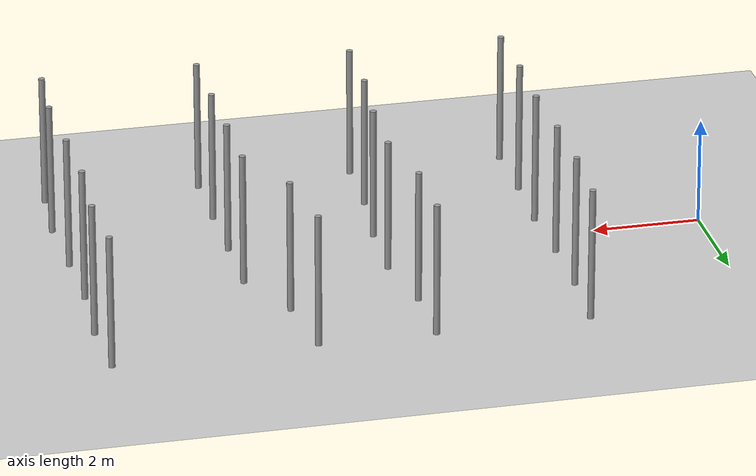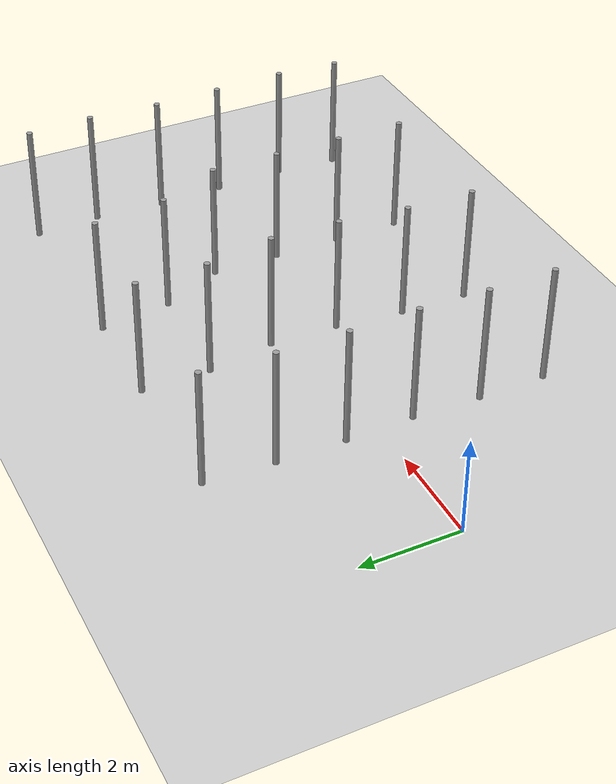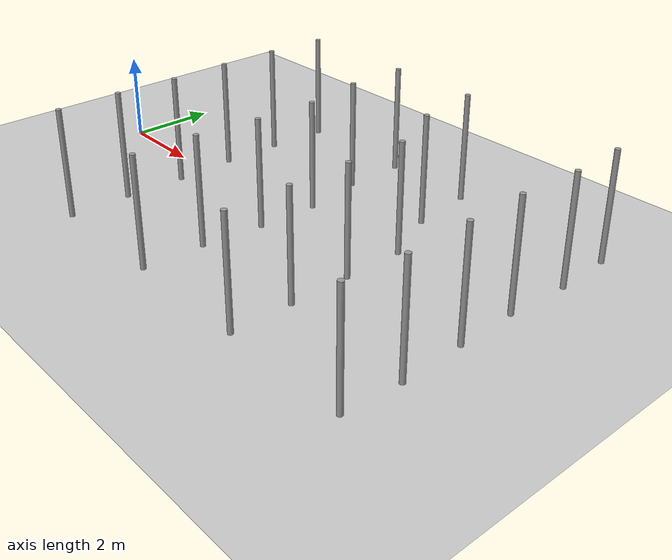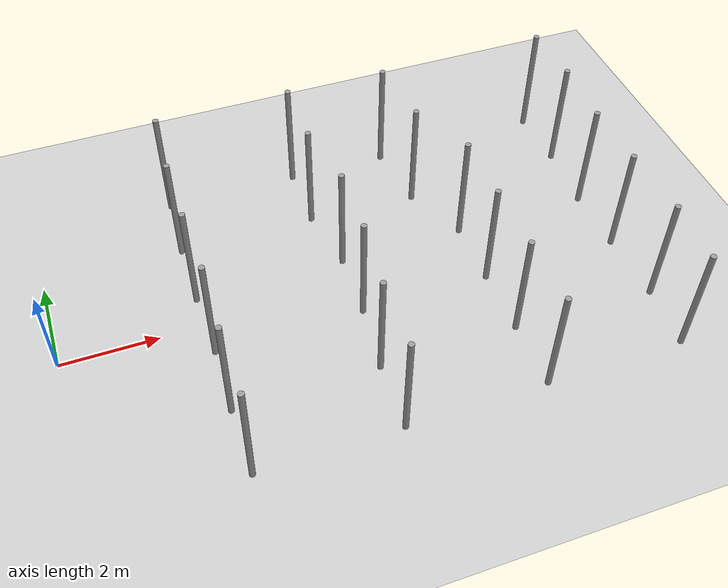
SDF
<sdf version="1.6">
 <world name="default">
  <light name="sun" type="directional">
   <pose>0 0 10 0 -0 0</pose>
   <diffuse>0.8 0.8 0.8 1</diffuse>
   <specular>0.1 0.1 0.1 1</specular>
   <attenuation>
    <range>1000</range>
    <constant>0.9</constant>
    <linear>0.01</linear>
    <quadratic>0.001</quadratic>
   </attenuation>
   <direction>-0.5 0.5 -1</direction>
  </light>
  <model name="ground_plane">
   <static>1</static>
   <link name="link">
    <collision name="collision">
     <geometry><plane><normal>0 0 1</normal><size>100 100</size></plane></geometry>
     <surface><friction><ode><mu>100</mu><mu2>50</mu2></ode></friction></surface>
    </collision>
    <visual name="visual">
     <cast_shadows>0</cast_shadows>
     <geometry><plane><normal>0 0 1</normal><size>100 100</size></plane></geometry>
     <material>
      <script><uri>file://media/materials/scripts/gazebo.material</uri><name>Gazebo/Grey</name></script>
     </material>
    </visual>
   </link>
  </model>
  <gravity>0 0 -9.8</gravity>
  <magnetic_field>6e-06 2.3e-05 -4.2e-05</magnetic_field>
  <atmosphere type="adiabatic"/>
  <physics name="default_physics" default="0" type="ode">
   <max_step_size>0.001</max_step_size>
   <real_time_factor>1</real_time_factor>
   <real_time_update_rate>1000</real_time_update_rate>
  </physics>
  <scene><ambient>0.4 0.4 0.4 1</ambient><background>0.7 0.7 0.7 1</background><shadows>1</shadows></scene>
  <spherical_coordinates>
   <surface_model>EARTH_WGS84</surface_model>
   <latitude_deg>0</latitude_deg>
   <longitude_deg>0</longitude_deg>
   <elevation>0</elevation>
   <heading_deg>0</heading_deg>
  </spherical_coordinates>
  <model name="pole_8">
   <link name="link_0">
    <inertial>
     <mass>0.0364582</mass>
     <inertia>
      <ixx>0.00312124</ixx>
      <ixy>0</ixy>
      <ixz>0</ixz>
      <iyy>0.00312124</iyy>
      <iyz>0</iyz>
      <izz>0.00016615</izz>
     </inertia>
    </inertial>
    <visual name="visual">
     <geometry><cylinder><radius>0.06</radius><length>2.5</length></cylinder></geometry>
     <material>
      <lighting>1</lighting>
      <script><uri>file://media/materials/scripts/gazebo.material</uri><name>Gazebo/Grey</name></script>
      <ambient>0.3 0.3 0.3 1</ambient>
      <diffuse>0.7 0.7 0.7 1</diffuse>
      <specular>0.01 0.01 0.01 1</specular>
      <emissive>0 0 0 1</emissive>
      <shader type="vertex"><normal_map>__default__</normal_map></shader>
     </material>
    </visual>
    <collision name="collision">
     <geometry><cylinder><radius>0.06</radius><length>2.5</length></cylinder></geometry>
     <surface>
      <friction>
       <ode><mu>1</mu><mu2>1</mu2><fdir1>0 0 0</fdir1><slip1>0</slip1><slip2>0</slip2></ode>
       <torsional>
        <coefficient>1</coefficient>
        <patch_radius>0</patch_radius>
        <surface_radius>0</surface_radius>
        <use_patch_radius>1</use_patch_radius>
        <ode><slip>0</slip></ode>
       </torsional>
      </friction>
      <bounce><restitution_coefficient>0</restitution_coefficient><threshold>1e+06</threshold></bounce>
      <contact>
       <collide_without_contact>0</collide_without_contact>
       <collide_without_contact_bitmask>1</collide_without_contact_bitmask>
       <collide_bitmask>1</collide_bitmask>
       <ode>
        <soft_cfm>0</soft_cfm>
        <soft_erp>0.2</soft_erp>
        <kp>1e+13</kp>
        <kd>1</kd>
        <max_vel>0.01</max_vel>
        <min_depth>0</min_depth>
       </ode>
       <bullet>
        <split_impulse>1</split_impulse>
        <split_impulse_penetration_threshold>-0.01</split_impulse_penetration_threshold>
        <soft_cfm>0</soft_cfm>
        <soft_erp>0.2</soft_erp>
        <kp>1e+13</kp>
        <kd>1</kd>
       </bullet>
      </contact>
     </surface>
    </collision>
   </link>
   <static>0</static>
   <pose>5.98903 -0.698712 1.25 -1e-06 -1e-06 -0.031912</pose>
  </model>
  <model name="pole_9">
   <link name="link_0">
    <inertial>
     <mass>0.0364582</mass>
     <inertia>
      <ixx>0.00312124</ixx>
      <ixy>0</ixy>
      <ixz>0</ixz>
      <iyy>0.00312124</iyy>
      <iyz>0</iyz>
      <izz>0.00016615</izz>
     </inertia>
    </inertial>
    <visual name="visual">
     <geometry><cylinder><radius>0.06</radius><length>2.5</length></cylinder></geometry>
     <material>
      <lighting>1</lighting>
      <script><uri>file://media/materials/scripts/gazebo.material</uri><name>Gazebo/Grey</name></script>
      <ambient>0.3 0.3 0.3 1</ambient>
      <diffuse>0.7 0.7 0.7 1</diffuse>
      <specular>0.01 0.01 0.01 1</specular>
      <emissive>0 0 0 1</emissive>
      <shader type="vertex"><normal_map>__default__</normal_map></shader>
     </material>
    </visual>
    <collision name="collision">
     <geometry><cylinder><radius>0.06</radius><length>2.5</length></cylinder></geometry>
     <surface>
      <friction>
       <ode><mu>1</mu><mu2>1</mu2><fdir1>0 0 0</fdir1><slip1>0</slip1><slip2>0</slip2></ode>
       <torsional>
        <coefficient>1</coefficient>
        <patch_radius>0</patch_radius>
        <surface_radius>0</surface_radius>
        <use_patch_radius>1</use_patch_radius>
        <ode><slip>0</slip></ode>
       </torsional>
      </friction>
      <bounce><restitution_coefficient>0</restitution_coefficient><threshold>1e+06</threshold></bounce>
      <contact>
       <collide_without_contact>0</collide_without_contact>
       <collide_without_contact_bitmask>1</collide_without_contact_bitmask>
       <collide_bitmask>1</collide_bitmask>
       <ode>
        <soft_cfm>0</soft_cfm>
        <soft_erp>0.2</soft_erp>
        <kp>1e+13</kp>
        <kd>1</kd>
        <max_vel>0.01</max_vel>
        <min_depth>0</min_depth>
       </ode>
       <bullet>
        <split_impulse>1</split_impulse>
        <split_impulse_penetration_threshold>-0.01</split_impulse_penetration_threshold>
        <soft_cfm>0</soft_cfm>
        <soft_erp>0.2</soft_erp>
        <kp>1e+13</kp>
        <kd>1</kd>
       </bullet>
      </contact>
     </surface>
    </collision>
   </link>
   <static>0</static>
   <pose>2.90019 0.701425 1.24999 -1e-06 -0 -0.048822</pose>
  </model>
  <model name="pole_10">
   <link name="link_0">
    <inertial>
     <mass>0.0364582</mass>
     <inertia>
      <ixx>0.00312124</ixx>
      <ixy>0</ixy>
      <ixz>0</ixz>
      <iyy>0.00312124</iyy>
      <iyz>0</iyz>
      <izz>0.00016615</izz>
     </inertia>
    </inertial>
    <visual name="visual">
     <geometry><cylinder><radius>0.06</radius><length>2.5</length></cylinder></geometry>
     <material>
      <lighting>1</lighting>
      <script><uri>file://media/materials/scripts/gazebo.material</uri><name>Gazebo/Grey</name></script>
      <ambient>0.3 0.3 0.3 1</ambient>
      <diffuse>0.7 0.7 0.7 1</diffuse>
      <specular>0.01 0.01 0.01 1</specular>
      <emissive>0 0 0 1</emissive>
      <shader type="vertex"><normal_map>__default__</normal_map></shader>
     </material>
    </visual>
    <collision name="collision">
     <geometry><cylinder><radius>0.06</radius><length>2.5</length></cylinder></geometry>
     <surface>
      <friction>
       <ode><mu>1</mu><mu2>1</mu2><fdir1>0 0 0</fdir1><slip1>0</slip1><slip2>0</slip2></ode>
       <torsional>
        <coefficient>1</coefficient>
        <patch_radius>0</patch_radius>
        <surface_radius>0</surface_radius>
        <use_patch_radius>1</use_patch_radius>
        <ode><slip>0</slip></ode>
       </torsional>
      </friction>
      <bounce><restitution_coefficient>0</restitution_coefficient><threshold>1e+06</threshold></bounce>
      <contact>
       <collide_without_contact>0</collide_without_contact>
       <collide_without_contact_bitmask>1</collide_without_contact_bitmask>
       <collide_bitmask>1</collide_bitmask>
       <ode>
        <soft_cfm>0</soft_cfm>
        <soft_erp>0.2</soft_erp>
        <kp>1e+13</kp>
        <kd>1</kd>
        <max_vel>0.01</max_vel>
        <min_depth>0</min_depth>
       </ode>
       <bullet>
        <split_impulse>1</split_impulse>
        <split_impulse_penetration_threshold>-0.01</split_impulse_penetration_threshold>
        <soft_cfm>0</soft_cfm>
        <soft_erp>0.2</soft_erp>
        <kp>1e+13</kp>
        <kd>1</kd>
       </bullet>
      </contact>
     </surface>
    </collision>
   </link>
   <static>0</static>
   <pose>6.03409 0.701286 1.24999 0 0 -0.034579</pose>
  </model>
  <model name="pole_11">
   <link name="link_0">
    <inertial>
     <mass>0.0364582</mass>
     <inertia>
      <ixx>0.00312124</ixx>
      <ixy>0</ixy>
      <ixz>0</ixz>
      <iyy>0.00312124</iyy>
      <iyz>0</iyz>
      <izz>0.00016615</izz>
     </inertia>
    </inertial>
    <visual name="visual">
     <geometry><cylinder><radius>0.06</radius><length>2.5</length></cylinder></geometry>
     <material>
      <lighting>1</lighting>
      <script><uri>file://media/materials/scripts/gazebo.material</uri><name>Gazebo/Grey</name></script>
      <ambient>0.3 0.3 0.3 1</ambient>
      <diffuse>0.7 0.7 0.7 1</diffuse>
      <specular>0.01 0.01 0.01 1</specular>
      <emissive>0 0 0 1</emissive>
      <shader type="vertex"><normal_map>__default__</normal_map></shader>
     </material>
    </visual>
    <collision name="collision">
     <geometry><cylinder><radius>0.06</radius><length>2.5</length></cylinder></geometry>
     <surface>
      <friction>
       <ode><mu>1</mu><mu2>1</mu2><fdir1>0 0 0</fdir1><slip1>0</slip1><slip2>0</slip2></ode>
       <torsional>
        <coefficient>1</coefficient>
        <patch_radius>0</patch_radius>
        <surface_radius>0</surface_radius>
        <use_patch_radius>1</use_patch_radius>
        <ode><slip>0</slip></ode>
       </torsional>
      </friction>
      <bounce><restitution_coefficient>0</restitution_coefficient><threshold>1e+06</threshold></bounce>
      <contact>
       <collide_without_contact>0</collide_without_contact>
       <collide_without_contact_bitmask>1</collide_without_contact_bitmask>
       <collide_bitmask>1</collide_bitmask>
       <ode>
        <soft_cfm>0</soft_cfm>
        <soft_erp>0.2</soft_erp>
        <kp>1e+13</kp>
        <kd>1</kd>
        <max_vel>0.01</max_vel>
        <min_depth>0</min_depth>
       </ode>
       <bullet>
        <split_impulse>1</split_impulse>
        <split_impulse_penetration_threshold>-0.01</split_impulse_penetration_threshold>
        <soft_cfm>0</soft_cfm>
        <soft_erp>0.2</soft_erp>
        <kp>1e+13</kp>
        <kd>1</kd>
       </bullet>
      </contact>
     </surface>
    </collision>
   </link>
   <static>0</static>
   <pose>2.93704 -0.698646 1.25 -1e-06 -0 -0.032243</pose>
  </model>
  <model name="pole_11_clone">
   <link name="link_0">
    <inertial>
     <mass>0.0364582</mass>
     <inertia>
      <ixx>0.00312124</ixx>
      <ixy>0</ixy>
      <ixz>0</ixz>
      <iyy>0.00312124</iyy>
      <iyz>0</iyz>
      <izz>0.00016615</izz>
     </inertia>
    </inertial>
    <visual name="visual">
     <geometry><cylinder><radius>0.06</radius><length>2.5</length></cylinder></geometry>
     <material>
      <lighting>1</lighting>
      <script><uri>file://media/materials/scripts/gazebo.material</uri><name>Gazebo/Grey</name></script>
      <ambient>0.3 0.3 0.3 1</ambient>
      <diffuse>0.7 0.7 0.7 1</diffuse>
      <specular>0.01 0.01 0.01 1</specular>
      <emissive>0 0 0 1</emissive>
      <shader type="vertex"><normal_map>__default__</normal_map></shader>
     </material>
    </visual>
    <collision name="collision">
     <geometry><cylinder><radius>0.06</radius><length>2.5</length></cylinder></geometry>
     <surface>
      <friction>
       <ode><mu>1</mu><mu2>1</mu2><fdir1>0 0 0</fdir1><slip1>0</slip1><slip2>0</slip2></ode>
       <torsional>
        <coefficient>1</coefficient>
        <patch_radius>0</patch_radius>
        <surface_radius>0</surface_radius>
        <use_patch_radius>1</use_patch_radius>
        <ode><slip>0</slip></ode>
       </torsional>
      </friction>
      <bounce><restitution_coefficient>0</restitution_coefficient><threshold>1e+06</threshold></bounce>
      <contact>
       <collide_without_contact>0</collide_without_contact>
       <collide_without_contact_bitmask>1</collide_without_contact_bitmask>
       <collide_bitmask>1</collide_bitmask>
       <ode>
        <soft_cfm>0</soft_cfm>
        <soft_erp>0.2</soft_erp>
        <kp>1e+13</kp>
        <kd>1</kd>
        <max_vel>0.01</max_vel>
        <min_depth>0</min_depth>
       </ode>
       <bullet>
        <split_impulse>1</split_impulse>
        <split_impulse_penetration_threshold>-0.01</split_impulse_penetration_threshold>
        <soft_cfm>0</soft_cfm>
        <soft_erp>0.2</soft_erp>
        <kp>1e+13</kp>
        <kd>1</kd>
       </bullet>
      </contact>
     </surface>
    </collision>
   </link>
   <static>0</static>
   <pose>11.621 3.50118 1.25 -1e-06 1e-06 -0.041316</pose>
  </model>
  <model name="pole">
   <link name="link_0">
    <inertial>
     <mass>0.0364582</mass>
     <inertia>
      <ixx>0.00312124</ixx>
      <ixy>0</ixy>
      <ixz>0</ixz>
      <iyy>0.00312124</iyy>
      <iyz>0</iyz>
      <izz>0.00016615</izz>
     </inertia>
    </inertial>
    <visual name="visual">
     <geometry><cylinder><radius>0.06</radius><length>2.5</length></cylinder></geometry>
     <material>
      <lighting>1</lighting>
      <script><uri>file://media/materials/scripts/gazebo.material</uri><name>Gazebo/Grey</name></script>
      <ambient>0.3 0.3 0.3 1</ambient>
      <diffuse>0.7 0.7 0.7 1</diffuse>
      <specular>0.01 0.01 0.01 1</specular>
      <emissive>0 0 0 1</emissive>
      <shader type="vertex"><normal_map>__default__</normal_map></shader>
     </material>
    </visual>
    <collision name="collision">
     <geometry><cylinder><radius>0.06</radius><length>2.5</length></cylinder></geometry>
     <surface>
      <friction>
       <ode><mu>1</mu><mu2>1</mu2><fdir1>0 0 0</fdir1><slip1>0</slip1><slip2>0</slip2></ode>
       <torsional>
        <coefficient>1</coefficient>
        <patch_radius>0</patch_radius>
        <surface_radius>0</surface_radius>
        <use_patch_radius>1</use_patch_radius>
        <ode><slip>0</slip></ode>
       </torsional>
      </friction>
      <bounce><restitution_coefficient>0</restitution_coefficient><threshold>1e+06</threshold></bounce>
      <contact>
       <collide_without_contact>0</collide_without_contact>
       <collide_without_contact_bitmask>1</collide_without_contact_bitmask>
       <collide_bitmask>1</collide_bitmask>
       <ode>
        <soft_cfm>0</soft_cfm>
        <soft_erp>0.2</soft_erp>
        <kp>1e+13</kp>
        <kd>1</kd>
        <max_vel>0.01</max_vel>
        <min_depth>0</min_depth>
       </ode>
       <bullet>
        <split_impulse>1</split_impulse>
        <split_impulse_penetration_threshold>-0.01</split_impulse_penetration_threshold>
        <soft_cfm>0</soft_cfm>
        <soft_erp>0.2</soft_erp>
        <kp>1e+13</kp>
        <kd>1</kd>
       </bullet>
      </contact>
     </surface>
    </collision>
   </link>
   <static>0</static>
   <pose>2.9001 -3.49913 1.25 -1e-06 1e-06 -0.027606</pose>
  </model>
  <model name="pole_0">
   <link name="link_0">
    <inertial>
     <mass>0.0364582</mass>
     <inertia>
      <ixx>0.00312124</ixx>
      <ixy>0</ixy>
      <ixz>0</ixz>
      <iyy>0.00312124</iyy>
      <iyz>0</iyz>
      <izz>0.00016615</izz>
     </inertia>
    </inertial>
    <visual name="visual">
     <geometry><cylinder><radius>0.06</radius><length>2.5</length></cylinder></geometry>
     <material>
      <lighting>1</lighting>
      <script><uri>file://media/materials/scripts/gazebo.material</uri><name>Gazebo/Grey</name></script>
      <ambient>0.3 0.3 0.3 1</ambient>
      <diffuse>0.7 0.7 0.7 1</diffuse>
      <specular>0.01 0.01 0.01 1</specular>
      <emissive>0 0 0 1</emissive>
      <shader type="vertex"><normal_map>__default__</normal_map></shader>
     </material>
    </visual>
    <collision name="collision">
     <geometry><cylinder><radius>0.06</radius><length>2.5</length></cylinder></geometry>
     <surface>
      <friction>
       <ode><mu>1</mu><mu2>1</mu2><fdir1>0 0 0</fdir1><slip1>0</slip1><slip2>0</slip2></ode>
       <torsional>
        <coefficient>1</coefficient>
        <patch_radius>0</patch_radius>
        <surface_radius>0</surface_radius>
        <use_patch_radius>1</use_patch_radius>
        <ode><slip>0</slip></ode>
       </torsional>
      </friction>
      <bounce><restitution_coefficient>0</restitution_coefficient><threshold>1e+06</threshold></bounce>
      <contact>
       <collide_without_contact>0</collide_without_contact>
       <collide_without_contact_bitmask>1</collide_without_contact_bitmask>
       <collide_bitmask>1</collide_bitmask>
       <ode>
        <soft_cfm>0</soft_cfm>
        <soft_erp>0.2</soft_erp>
        <kp>1e+13</kp>
        <kd>1</kd>
        <max_vel>0.01</max_vel>
        <min_depth>0</min_depth>
       </ode>
       <bullet>
        <split_impulse>1</split_impulse>
        <split_impulse_penetration_threshold>-0.01</split_impulse_penetration_threshold>
        <soft_cfm>0</soft_cfm>
        <soft_erp>0.2</soft_erp>
        <kp>1e+13</kp>
        <kd>1</kd>
       </bullet>
      </contact>
     </surface>
    </collision>
   </link>
   <static>0</static>
   <pose>7.92452 3.46871 1.24999 -1e-06 -1e-06 -0.031557</pose>
  </model>
  <model name="pole_1">
   <link name="link_0">
    <inertial>
     <mass>0.0364582</mass>
     <inertia>
      <ixx>0.00312124</ixx>
      <ixy>0</ixy>
      <ixz>0</ixz>
      <iyy>0.00312124</iyy>
      <iyz>0</iyz>
      <izz>0.00016615</izz>
     </inertia>
    </inertial>
    <visual name="visual">
     <geometry><cylinder><radius>0.06</radius><length>2.5</length></cylinder></geometry>
     <material>
      <lighting>1</lighting>
      <script><uri>file://media/materials/scripts/gazebo.material</uri><name>Gazebo/Grey</name></script>
      <ambient>0.3 0.3 0.3 1</ambient>
      <diffuse>0.7 0.7 0.7 1</diffuse>
      <specular>0.01 0.01 0.01 1</specular>
      <emissive>0 0 0 1</emissive>
      <shader type="vertex"><normal_map>__default__</normal_map></shader>
     </material>
    </visual>
    <collision name="collision">
     <geometry><cylinder><radius>0.06</radius><length>2.5</length></cylinder></geometry>
     <surface>
      <friction>
       <ode><mu>1</mu><mu2>1</mu2><fdir1>0 0 0</fdir1><slip1>0</slip1><slip2>0</slip2></ode>
       <torsional>
        <coefficient>1</coefficient>
        <patch_radius>0</patch_radius>
        <surface_radius>0</surface_radius>
        <use_patch_radius>1</use_patch_radius>
        <ode><slip>0</slip></ode>
       </torsional>
      </friction>
      <bounce><restitution_coefficient>0</restitution_coefficient><threshold>1e+06</threshold></bounce>
      <contact>
       <collide_without_contact>0</collide_without_contact>
       <collide_without_contact_bitmask>1</collide_without_contact_bitmask>
       <collide_bitmask>1</collide_bitmask>
       <ode>
        <soft_cfm>0</soft_cfm>
        <soft_erp>0.2</soft_erp>
        <kp>1e+13</kp>
        <kd>1</kd>
        <max_vel>0.01</max_vel>
        <min_depth>0</min_depth>
       </ode>
       <bullet>
        <split_impulse>1</split_impulse>
        <split_impulse_penetration_threshold>-0.01</split_impulse_penetration_threshold>
        <soft_cfm>0</soft_cfm>
        <soft_erp>0.2</soft_erp>
        <kp>1e+13</kp>
        <kd>1</kd>
       </bullet>
      </contact>
     </surface>
    </collision>
   </link>
   <static>0</static>
   <pose>11.6854 2.16317 1.24999 0 -1e-06 -0.031765</pose>
  </model>
  <model name="pole_3">
   <link name="link_0">
    <inertial>
     <mass>0.0364582</mass>
     <inertia>
      <ixx>0.00312124</ixx>
      <ixy>0</ixy>
      <ixz>0</ixz>
      <iyy>0.00312124</iyy>
      <iyz>0</iyz>
      <izz>0.00016615</izz>
     </inertia>
    </inertial>
    <visual name="visual">
     <geometry><cylinder><radius>0.06</radius><length>2.5</length></cylinder></geometry>
     <material>
      <lighting>1</lighting>
      <script><uri>file://media/materials/scripts/gazebo.material</uri><name>Gazebo/Grey</name></script>
      <ambient>0.3 0.3 0.3 1</ambient>
      <diffuse>0.7 0.7 0.7 1</diffuse>
      <specular>0.01 0.01 0.01 1</specular>
      <emissive>0 0 0 1</emissive>
      <shader type="vertex"><normal_map>__default__</normal_map></shader>
     </material>
    </visual>
    <collision name="collision">
     <geometry><cylinder><radius>0.06</radius><length>2.5</length></cylinder></geometry>
     <surface>
      <friction>
       <ode><mu>1</mu><mu2>1</mu2><fdir1>0 0 0</fdir1><slip1>0</slip1><slip2>0</slip2></ode>
       <torsional>
        <coefficient>1</coefficient>
        <patch_radius>0</patch_radius>
        <surface_radius>0</surface_radius>
        <use_patch_radius>1</use_patch_radius>
        <ode><slip>0</slip></ode>
       </torsional>
      </friction>
      <bounce><restitution_coefficient>0</restitution_coefficient><threshold>1e+06</threshold></bounce>
      <contact>
       <collide_without_contact>0</collide_without_contact>
       <collide_without_contact_bitmask>1</collide_without_contact_bitmask>
       <collide_bitmask>1</collide_bitmask>
       <ode>
        <soft_cfm>0</soft_cfm>
        <soft_erp>0.2</soft_erp>
        <kp>1e+13</kp>
        <kd>1</kd>
        <max_vel>0.01</max_vel>
        <min_depth>0</min_depth>
       </ode>
       <bullet>
        <split_impulse>1</split_impulse>
        <split_impulse_penetration_threshold>-0.01</split_impulse_penetration_threshold>
        <soft_cfm>0</soft_cfm>
        <soft_erp>0.2</soft_erp>
        <kp>1e+13</kp>
        <kd>1</kd>
       </bullet>
      </contact>
     </surface>
    </collision>
   </link>
   <static>0</static>
   <pose>8.70015 -0.698813 1.25 0 -1e-06 -0.027629</pose>
  </model>
  <model name="pole_5">
   <link name="link_0">
    <inertial>
     <mass>0.0364582</mass>
     <inertia>
      <ixx>0.00312124</ixx>
      <ixy>0</ixy>
      <ixz>0</ixz>
      <iyy>0.00312124</iyy>
      <iyz>0</iyz>
      <izz>0.00016615</izz>
     </inertia>
    </inertial>
    <visual name="visual">
     <geometry><cylinder><radius>0.06</radius><length>2.5</length></cylinder></geometry>
     <material>
      <lighting>1</lighting>
      <script><uri>file://media/materials/scripts/gazebo.material</uri><name>Gazebo/Grey</name></script>
      <ambient>0.3 0.3 0.3 1</ambient>
      <diffuse>0.7 0.7 0.7 1</diffuse>
      <specular>0.01 0.01 0.01 1</specular>
      <emissive>0 0 0 1</emissive>
      <shader type="vertex"><normal_map>__default__</normal_map></shader>
     </material>
    </visual>
    <collision name="collision">
     <geometry><cylinder><radius>0.06</radius><length>2.5</length></cylinder></geometry>
     <surface>
      <friction>
       <ode><mu>1</mu><mu2>1</mu2><fdir1>0 0 0</fdir1><slip1>0</slip1><slip2>0</slip2></ode>
       <torsional>
        <coefficient>1</coefficient>
        <patch_radius>0</patch_radius>
        <surface_radius>0</surface_radius>
        <use_patch_radius>1</use_patch_radius>
        <ode><slip>0</slip></ode>
       </torsional>
      </friction>
      <bounce><restitution_coefficient>0</restitution_coefficient><threshold>1e+06</threshold></bounce>
      <contact>
       <collide_without_contact>0</collide_without_contact>
       <collide_without_contact_bitmask>1</collide_without_contact_bitmask>
       <collide_bitmask>1</collide_bitmask>
       <ode>
        <soft_cfm>0</soft_cfm>
        <soft_erp>0.2</soft_erp>
        <kp>1e+13</kp>
        <kd>1</kd>
        <max_vel>0.01</max_vel>
        <min_depth>0</min_depth>
       </ode>
       <bullet>
        <split_impulse>1</split_impulse>
        <split_impulse_penetration_threshold>-0.01</split_impulse_penetration_threshold>
        <soft_cfm>0</soft_cfm>
        <soft_erp>0.2</soft_erp>
        <kp>1e+13</kp>
        <kd>1</kd>
       </bullet>
      </contact>
     </surface>
    </collision>
   </link>
   <static>0</static>
   <pose>11.634 -0.698973 1.25 -0 1e-06 -0.026451</pose>
  </model>
  <model name="pole_6">
   <link name="link_0">
    <inertial>
     <mass>0.0364582</mass>
     <inertia>
      <ixx>0.00312124</ixx>
      <ixy>0</ixy>
      <ixz>0</ixz>
      <iyy>0.00312124</iyy>
      <iyz>0</iyz>
      <izz>0.00016615</izz>
     </inertia>
    </inertial>
    <visual name="visual">
     <geometry><cylinder><radius>0.06</radius><length>2.5</length></cylinder></geometry>
     <material>
      <lighting>1</lighting>
      <script><uri>file://media/materials/scripts/gazebo.material</uri><name>Gazebo/Grey</name></script>
      <ambient>0.3 0.3 0.3 1</ambient>
      <diffuse>0.7 0.7 0.7 1</diffuse>
      <specular>0.01 0.01 0.01 1</specular>
      <emissive>0 0 0 1</emissive>
      <shader type="vertex"><normal_map>__default__</normal_map></shader>
     </material>
    </visual>
    <collision name="collision">
     <geometry><cylinder><radius>0.06</radius><length>2.5</length></cylinder></geometry>
     <surface>
      <friction>
       <ode><mu>1</mu><mu2>1</mu2><fdir1>0 0 0</fdir1><slip1>0</slip1><slip2>0</slip2></ode>
       <torsional>
        <coefficient>1</coefficient>
        <patch_radius>0</patch_radius>
        <surface_radius>0</surface_radius>
        <use_patch_radius>1</use_patch_radius>
        <ode><slip>0</slip></ode>
       </torsional>
      </friction>
      <bounce><restitution_coefficient>0</restitution_coefficient><threshold>1e+06</threshold></bounce>
      <contact>
       <collide_without_contact>0</collide_without_contact>
       <collide_without_contact_bitmask>1</collide_without_contact_bitmask>
       <collide_bitmask>1</collide_bitmask>
       <ode>
        <soft_cfm>0</soft_cfm>
        <soft_erp>0.2</soft_erp>
        <kp>1e+13</kp>
        <kd>1</kd>
        <max_vel>0.01</max_vel>
        <min_depth>0</min_depth>
       </ode>
       <bullet>
        <split_impulse>1</split_impulse>
        <split_impulse_penetration_threshold>-0.01</split_impulse_penetration_threshold>
        <soft_cfm>0</soft_cfm>
        <soft_erp>0.2</soft_erp>
        <kp>1e+13</kp>
        <kd>1</kd>
       </bullet>
      </contact>
     </surface>
    </collision>
   </link>
   <static>0</static>
   <pose>11.6001 0.700818 1.24999 0 4e-06 -0.027978</pose>
  </model>
  <model name="pole_7">
   <link name="link_0">
    <inertial>
     <mass>0.0364582</mass>
     <inertia>
      <ixx>0.00312124</ixx>
      <ixy>0</ixy>
      <ixz>0</ixz>
      <iyy>0.00312124</iyy>
      <iyz>0</iyz>
      <izz>0.00016615</izz>
     </inertia>
    </inertial>
    <visual name="visual">
     <geometry><cylinder><radius>0.06</radius><length>2.5</length></cylinder></geometry>
     <material>
      <lighting>1</lighting>
      <script><uri>file://media/materials/scripts/gazebo.material</uri><name>Gazebo/Grey</name></script>
      <ambient>0.3 0.3 0.3 1</ambient>
      <diffuse>0.7 0.7 0.7 1</diffuse>
      <specular>0.01 0.01 0.01 1</specular>
      <emissive>0 0 0 1</emissive>
      <shader type="vertex"><normal_map>__default__</normal_map></shader>
     </material>
    </visual>
    <collision name="collision">
     <geometry><cylinder><radius>0.06</radius><length>2.5</length></cylinder></geometry>
     <surface>
      <friction>
       <ode><mu>1</mu><mu2>1</mu2><fdir1>0 0 0</fdir1><slip1>0</slip1><slip2>0</slip2></ode>
       <torsional>
        <coefficient>1</coefficient>
        <patch_radius>0</patch_radius>
        <surface_radius>0</surface_radius>
        <use_patch_radius>1</use_patch_radius>
        <ode><slip>0</slip></ode>
       </torsional>
      </friction>
      <bounce><restitution_coefficient>0</restitution_coefficient><threshold>1e+06</threshold></bounce>
      <contact>
       <collide_without_contact>0</collide_without_contact>
       <collide_without_contact_bitmask>1</collide_without_contact_bitmask>
       <collide_bitmask>1</collide_bitmask>
       <ode>
        <soft_cfm>0</soft_cfm>
        <soft_erp>0.2</soft_erp>
        <kp>1e+13</kp>
        <kd>1</kd>
        <max_vel>0.01</max_vel>
        <min_depth>0</min_depth>
       </ode>
       <bullet>
        <split_impulse>1</split_impulse>
        <split_impulse_penetration_threshold>-0.01</split_impulse_penetration_threshold>
        <soft_cfm>0</soft_cfm>
        <soft_erp>0.2</soft_erp>
        <kp>1e+13</kp>
        <kd>1</kd>
       </bullet>
      </contact>
     </surface>
    </collision>
   </link>
   <static>0</static>
   <pose>8.70013 0.701011 1.24999 0 -4e-06 -0.025868</pose>
  </model>
  <model name="pole_12">
   <link name="link_0">
    <inertial>
     <mass>0.0364582</mass>
     <inertia>
      <ixx>0.00312124</ixx>
      <ixy>0</ixy>
      <ixz>0</ixz>
      <iyy>0.00312124</iyy>
      <iyz>0</iyz>
      <izz>0.00016615</izz>
     </inertia>
    </inertial>
    <visual name="visual">
     <geometry><cylinder><radius>0.06</radius><length>2.5</length></cylinder></geometry>
     <material>
      <lighting>1</lighting>
      <script><uri>file://media/materials/scripts/gazebo.material</uri><name>Gazebo/Grey</name></script>
      <ambient>0.3 0.3 0.3 1</ambient>
      <diffuse>0.7 0.7 0.7 1</diffuse>
      <specular>0.01 0.01 0.01 1</specular>
      <emissive>0 0 0 1</emissive>
      <shader type="vertex"><normal_map>__default__</normal_map></shader>
     </material>
    </visual>
    <collision name="collision">
     <geometry><cylinder><radius>0.06</radius><length>2.5</length></cylinder></geometry>
     <surface>
      <friction>
       <ode><mu>1</mu><mu2>1</mu2><fdir1>0 0 0</fdir1><slip1>0</slip1><slip2>0</slip2></ode>
       <torsional>
        <coefficient>1</coefficient>
        <patch_radius>0</patch_radius>
        <surface_radius>0</surface_radius>
        <use_patch_radius>1</use_patch_radius>
        <ode><slip>0</slip></ode>
       </torsional>
      </friction>
      <bounce><restitution_coefficient>0</restitution_coefficient><threshold>1e+06</threshold></bounce>
      <contact>
       <collide_without_contact>0</collide_without_contact>
       <collide_without_contact_bitmask>1</collide_without_contact_bitmask>
       <collide_bitmask>1</collide_bitmask>
       <ode>
        <soft_cfm>0</soft_cfm>
        <soft_erp>0.2</soft_erp>
        <kp>1e+13</kp>
        <kd>1</kd>
        <max_vel>0.01</max_vel>
        <min_depth>0</min_depth>
       </ode>
       <bullet>
        <split_impulse>1</split_impulse>
        <split_impulse_penetration_threshold>-0.01</split_impulse_penetration_threshold>
        <soft_cfm>0</soft_cfm>
        <soft_erp>0.2</soft_erp>
        <kp>1e+13</kp>
        <kd>1</kd>
       </bullet>
      </contact>
     </surface>
    </collision>
   </link>
   <static>0</static>
   <pose>2.98884 3.50083 1.25 -1e-06 1e-06 -0.028516</pose>
  </model>
  <model name="pole_13">
   <link name="link_0">
    <inertial>
     <mass>0.0364582</mass>
     <inertia>
      <ixx>0.00312124</ixx>
      <ixy>0</ixy>
      <ixz>0</ixz>
      <iyy>0.00312124</iyy>
      <iyz>0</iyz>
      <izz>0.00016615</izz>
     </inertia>
    </inertial>
    <visual name="visual">
     <geometry><cylinder><radius>0.06</radius><length>2.5</length></cylinder></geometry>
     <material>
      <lighting>1</lighting>
      <script><uri>file://media/materials/scripts/gazebo.material</uri><name>Gazebo/Grey</name></script>
      <ambient>0.3 0.3 0.3 1</ambient>
      <diffuse>0.7 0.7 0.7 1</diffuse>
      <specular>0.01 0.01 0.01 1</specular>
      <emissive>0 0 0 1</emissive>
      <shader type="vertex"><normal_map>__default__</normal_map></shader>
     </material>
    </visual>
    <collision name="collision">
     <geometry><cylinder><radius>0.06</radius><length>2.5</length></cylinder></geometry>
     <surface>
      <friction>
       <ode><mu>1</mu><mu2>1</mu2><fdir1>0 0 0</fdir1><slip1>0</slip1><slip2>0</slip2></ode>
       <torsional>
        <coefficient>1</coefficient>
        <patch_radius>0</patch_radius>
        <surface_radius>0</surface_radius>
        <use_patch_radius>1</use_patch_radius>
        <ode><slip>0</slip></ode>
       </torsional>
      </friction>
      <bounce><restitution_coefficient>0</restitution_coefficient><threshold>1e+06</threshold></bounce>
      <contact>
       <collide_without_contact>0</collide_without_contact>
       <collide_without_contact_bitmask>1</collide_without_contact_bitmask>
       <collide_bitmask>1</collide_bitmask>
       <ode>
        <soft_cfm>0</soft_cfm>
        <soft_erp>0.2</soft_erp>
        <kp>1e+13</kp>
        <kd>1</kd>
        <max_vel>0.01</max_vel>
        <min_depth>0</min_depth>
       </ode>
       <bullet>
        <split_impulse>1</split_impulse>
        <split_impulse_penetration_threshold>-0.01</split_impulse_penetration_threshold>
        <soft_cfm>0</soft_cfm>
        <soft_erp>0.2</soft_erp>
        <kp>1e+13</kp>
        <kd>1</kd>
       </bullet>
      </contact>
     </surface>
    </collision>
   </link>
   <static>0</static>
   <pose>2.88911 -2.09946 1.24999 0 1e-06 -0.021301</pose>
  </model>
  <model name="pole_14">
   <link name="link_0">
    <inertial>
     <mass>0.0364582</mass>
     <inertia>
      <ixx>0.00312124</ixx>
      <ixy>0</ixy>
      <ixz>0</ixz>
      <iyy>0.00312124</iyy>
      <iyz>0</iyz>
      <izz>0.00016615</izz>
     </inertia>
    </inertial>
    <visual name="visual">
     <geometry><cylinder><radius>0.06</radius><length>2.5</length></cylinder></geometry>
     <material>
      <lighting>1</lighting>
      <script><uri>file://media/materials/scripts/gazebo.material</uri><name>Gazebo/Grey</name></script>
      <ambient>0.3 0.3 0.3 1</ambient>
      <diffuse>0.7 0.7 0.7 1</diffuse>
      <specular>0.01 0.01 0.01 1</specular>
      <emissive>0 0 0 1</emissive>
      <shader type="vertex"><normal_map>__default__</normal_map></shader>
     </material>
    </visual>
    <collision name="collision">
     <geometry><cylinder><radius>0.06</radius><length>2.5</length></cylinder></geometry>
     <surface>
      <friction>
       <ode><mu>1</mu><mu2>1</mu2><fdir1>0 0 0</fdir1><slip1>0</slip1><slip2>0</slip2></ode>
       <torsional>
        <coefficient>1</coefficient>
        <patch_radius>0</patch_radius>
        <surface_radius>0</surface_radius>
        <use_patch_radius>1</use_patch_radius>
        <ode><slip>0</slip></ode>
       </torsional>
      </friction>
      <bounce><restitution_coefficient>0</restitution_coefficient><threshold>1e+06</threshold></bounce>
      <contact>
       <collide_without_contact>0</collide_without_contact>
       <collide_without_contact_bitmask>1</collide_without_contact_bitmask>
       <collide_bitmask>1</collide_bitmask>
       <ode>
        <soft_cfm>0</soft_cfm>
        <soft_erp>0.2</soft_erp>
        <kp>1e+13</kp>
        <kd>1</kd>
        <max_vel>0.01</max_vel>
        <min_depth>0</min_depth>
       </ode>
       <bullet>
        <split_impulse>1</split_impulse>
        <split_impulse_penetration_threshold>-0.01</split_impulse_penetration_threshold>
        <soft_cfm>0</soft_cfm>
        <soft_erp>0.2</soft_erp>
        <kp>1e+13</kp>
        <kd>1</kd>
       </bullet>
      </contact>
     </surface>
    </collision>
   </link>
   <static>0</static>
   <pose>2.91093 2.10077 1.24999 -1e-06 1e-06 -0.023937</pose>
  </model>
  <model name="pole_15">
   <link name="link_0">
    <inertial>
     <mass>0.0364582</mass>
     <inertia>
      <ixx>0.00312124</ixx>
      <ixy>0</ixy>
      <ixz>0</ixz>
      <iyy>0.00312124</iyy>
      <iyz>0</iyz>
      <izz>0.00016615</izz>
     </inertia>
    </inertial>
    <visual name="visual">
     <geometry><cylinder><radius>0.06</radius><length>2.5</length></cylinder></geometry>
     <material>
      <lighting>1</lighting>
      <script><uri>file://media/materials/scripts/gazebo.material</uri><name>Gazebo/Grey</name></script>
      <ambient>0.3 0.3 0.3 1</ambient>
      <diffuse>0.7 0.7 0.7 1</diffuse>
      <specular>0.01 0.01 0.01 1</specular>
      <emissive>0 0 0 1</emissive>
      <shader type="vertex"><normal_map>__default__</normal_map></shader>
     </material>
    </visual>
    <collision name="collision">
     <geometry><cylinder><radius>0.06</radius><length>2.5</length></cylinder></geometry>
     <surface>
      <friction>
       <ode><mu>1</mu><mu2>1</mu2><fdir1>0 0 0</fdir1><slip1>0</slip1><slip2>0</slip2></ode>
       <torsional>
        <coefficient>1</coefficient>
        <patch_radius>0</patch_radius>
        <surface_radius>0</surface_radius>
        <use_patch_radius>1</use_patch_radius>
        <ode><slip>0</slip></ode>
       </torsional>
      </friction>
      <bounce><restitution_coefficient>0</restitution_coefficient><threshold>1e+06</threshold></bounce>
      <contact>
       <collide_without_contact>0</collide_without_contact>
       <collide_without_contact_bitmask>1</collide_without_contact_bitmask>
       <collide_bitmask>1</collide_bitmask>
       <ode>
        <soft_cfm>0</soft_cfm>
        <soft_erp>0.2</soft_erp>
        <kp>1e+13</kp>
        <kd>1</kd>
        <max_vel>0.01</max_vel>
        <min_depth>0</min_depth>
       </ode>
       <bullet>
        <split_impulse>1</split_impulse>
        <split_impulse_penetration_threshold>-0.01</split_impulse_penetration_threshold>
        <soft_cfm>0</soft_cfm>
        <soft_erp>0.2</soft_erp>
        <kp>1e+13</kp>
        <kd>1</kd>
       </bullet>
      </contact>
     </surface>
    </collision>
   </link>
   <static>0</static>
   <pose>11.6 -3.4999 1.25 0 -1e-06 -0.022905</pose>
  </model>
  <model name="pole_16">
   <link name="link_0">
    <inertial>
     <mass>0.0364582</mass>
     <inertia>
      <ixx>0.00312124</ixx>
      <ixy>0</ixy>
      <ixz>0</ixz>
      <iyy>0.00312124</iyy>
      <iyz>0</iyz>
      <izz>0.00016615</izz>
     </inertia>
    </inertial>
    <visual name="visual">
     <geometry><cylinder><radius>0.06</radius><length>2.5</length></cylinder></geometry>
     <material>
      <lighting>1</lighting>
      <script><uri>file://media/materials/scripts/gazebo.material</uri><name>Gazebo/Grey</name></script>
      <ambient>0.3 0.3 0.3 1</ambient>
      <diffuse>0.7 0.7 0.7 1</diffuse>
      <specular>0.01 0.01 0.01 1</specular>
      <emissive>0 0 0 1</emissive>
      <shader type="vertex"><normal_map>__default__</normal_map></shader>
     </material>
    </visual>
    <collision name="collision">
     <geometry><cylinder><radius>0.06</radius><length>2.5</length></cylinder></geometry>
     <surface>
      <friction>
       <ode><mu>1</mu><mu2>1</mu2><fdir1>0 0 0</fdir1><slip1>0</slip1><slip2>0</slip2></ode>
       <torsional>
        <coefficient>1</coefficient>
        <patch_radius>0</patch_radius>
        <surface_radius>0</surface_radius>
        <use_patch_radius>1</use_patch_radius>
        <ode><slip>0</slip></ode>
       </torsional>
      </friction>
      <bounce><restitution_coefficient>0</restitution_coefficient><threshold>1e+06</threshold></bounce>
      <contact>
       <collide_without_contact>0</collide_without_contact>
       <collide_without_contact_bitmask>1</collide_without_contact_bitmask>
       <collide_bitmask>1</collide_bitmask>
       <ode>
        <soft_cfm>0</soft_cfm>
        <soft_erp>0.2</soft_erp>
        <kp>1e+13</kp>
        <kd>1</kd>
        <max_vel>0.01</max_vel>
        <min_depth>0</min_depth>
       </ode>
       <bullet>
        <split_impulse>1</split_impulse>
        <split_impulse_penetration_threshold>-0.01</split_impulse_penetration_threshold>
        <soft_cfm>0</soft_cfm>
        <soft_erp>0.2</soft_erp>
        <kp>1e+13</kp>
        <kd>1</kd>
       </bullet>
      </contact>
     </surface>
    </collision>
   </link>
   <static>0</static>
   <pose>5.80006 -3.49955 1.24999 -0 1e-06 -0.026072</pose>
  </model>
  <model name="pole_17">
   <link name="link_0">
    <inertial>
     <mass>0.0364582</mass>
     <inertia>
      <ixx>0.00312124</ixx>
      <ixy>0</ixy>
      <ixz>0</ixz>
      <iyy>0.00312124</iyy>
      <iyz>0</iyz>
      <izz>0.00016615</izz>
     </inertia>
    </inertial>
    <visual name="visual">
     <geometry><cylinder><radius>0.06</radius><length>2.5</length></cylinder></geometry>
     <material>
      <lighting>1</lighting>
      <script><uri>file://media/materials/scripts/gazebo.material</uri><name>Gazebo/Grey</name></script>
      <ambient>0.3 0.3 0.3 1</ambient>
      <diffuse>0.7 0.7 0.7 1</diffuse>
      <specular>0.01 0.01 0.01 1</specular>
      <emissive>0 0 0 1</emissive>
      <shader type="vertex"><normal_map>__default__</normal_map></shader>
     </material>
    </visual>
    <collision name="collision">
     <geometry><cylinder><radius>0.06</radius><length>2.5</length></cylinder></geometry>
     <surface>
      <friction>
       <ode><mu>1</mu><mu2>1</mu2><fdir1>0 0 0</fdir1><slip1>0</slip1><slip2>0</slip2></ode>
       <torsional>
        <coefficient>1</coefficient>
        <patch_radius>0</patch_radius>
        <surface_radius>0</surface_radius>
        <use_patch_radius>1</use_patch_radius>
        <ode><slip>0</slip></ode>
       </torsional>
      </friction>
      <bounce><restitution_coefficient>0</restitution_coefficient><threshold>1e+06</threshold></bounce>
      <contact>
       <collide_without_contact>0</collide_without_contact>
       <collide_without_contact_bitmask>1</collide_without_contact_bitmask>
       <collide_bitmask>1</collide_bitmask>
       <ode>
        <soft_cfm>0</soft_cfm>
        <soft_erp>0.2</soft_erp>
        <kp>1e+13</kp>
        <kd>1</kd>
        <max_vel>0.01</max_vel>
        <min_depth>0</min_depth>
       </ode>
       <bullet>
        <split_impulse>1</split_impulse>
        <split_impulse_penetration_threshold>-0.01</split_impulse_penetration_threshold>
        <soft_cfm>0</soft_cfm>
        <soft_erp>0.2</soft_erp>
        <kp>1e+13</kp>
        <kd>1</kd>
       </bullet>
      </contact>
     </surface>
    </collision>
   </link>
   <static>0</static>
   <pose>5.83619 -2.09954 1.24999 0 -4e-06 -0.022101</pose>
  </model>
  <model name="pole_18">
   <link name="link_0">
    <inertial>
     <mass>0.0364582</mass>
     <inertia>
      <ixx>0.00312124</ixx>
      <ixy>0</ixy>
      <ixz>0</ixz>
      <iyy>0.00312124</iyy>
      <iyz>0</iyz>
      <izz>0.00016615</izz>
     </inertia>
    </inertial>
    <visual name="visual">
     <geometry><cylinder><radius>0.06</radius><length>2.5</length></cylinder></geometry>
     <material>
      <lighting>1</lighting>
      <script><uri>file://media/materials/scripts/gazebo.material</uri><name>Gazebo/Grey</name></script>
      <ambient>0.3 0.3 0.3 1</ambient>
      <diffuse>0.7 0.7 0.7 1</diffuse>
      <specular>0.01 0.01 0.01 1</specular>
      <emissive>0 0 0 1</emissive>
      <shader type="vertex"><normal_map>__default__</normal_map></shader>
     </material>
    </visual>
    <collision name="collision">
     <geometry><cylinder><radius>0.06</radius><length>2.5</length></cylinder></geometry>
     <surface>
      <friction>
       <ode><mu>1</mu><mu2>1</mu2><fdir1>0 0 0</fdir1><slip1>0</slip1><slip2>0</slip2></ode>
       <torsional>
        <coefficient>1</coefficient>
        <patch_radius>0</patch_radius>
        <surface_radius>0</surface_radius>
        <use_patch_radius>1</use_patch_radius>
        <ode><slip>0</slip></ode>
       </torsional>
      </friction>
      <bounce><restitution_coefficient>0</restitution_coefficient><threshold>1e+06</threshold></bounce>
      <contact>
       <collide_without_contact>0</collide_without_contact>
       <collide_without_contact_bitmask>1</collide_without_contact_bitmask>
       <collide_bitmask>1</collide_bitmask>
       <ode>
        <soft_cfm>0</soft_cfm>
        <soft_erp>0.2</soft_erp>
        <kp>1e+13</kp>
        <kd>1</kd>
        <max_vel>0.01</max_vel>
        <min_depth>0</min_depth>
       </ode>
       <bullet>
        <split_impulse>1</split_impulse>
        <split_impulse_penetration_threshold>-0.01</split_impulse_penetration_threshold>
        <soft_cfm>0</soft_cfm>
        <soft_erp>0.2</soft_erp>
        <kp>1e+13</kp>
        <kd>1</kd>
       </bullet>
      </contact>
     </surface>
    </collision>
   </link>
   <static>0</static>
   <pose>5.80007 2.10055 1.24999 -1e-06 -0 -0.024026</pose>
  </model>
  <model name="pole_19">
   <link name="link_0">
    <inertial>
     <mass>0.0364582</mass>
     <inertia>
      <ixx>0.00312124</ixx>
      <ixy>0</ixy>
      <ixz>0</ixz>
      <iyy>0.00312124</iyy>
      <iyz>0</iyz>
      <izz>0.00016615</izz>
     </inertia>
    </inertial>
    <visual name="visual">
     <geometry><cylinder><radius>0.06</radius><length>2.5</length></cylinder></geometry>
     <material>
      <lighting>1</lighting>
      <script><uri>file://media/materials/scripts/gazebo.material</uri><name>Gazebo/Grey</name></script>
      <ambient>0.3 0.3 0.3 1</ambient>
      <diffuse>0.7 0.7 0.7 1</diffuse>
      <specular>0.01 0.01 0.01 1</specular>
      <emissive>0 0 0 1</emissive>
      <shader type="vertex"><normal_map>__default__</normal_map></shader>
     </material>
    </visual>
    <collision name="collision">
     <geometry><cylinder><radius>0.06</radius><length>2.5</length></cylinder></geometry>
     <surface>
      <friction>
       <ode><mu>1</mu><mu2>1</mu2><fdir1>0 0 0</fdir1><slip1>0</slip1><slip2>0</slip2></ode>
       <torsional>
        <coefficient>1</coefficient>
        <patch_radius>0</patch_radius>
        <surface_radius>0</surface_radius>
        <use_patch_radius>1</use_patch_radius>
        <ode><slip>0</slip></ode>
       </torsional>
      </friction>
      <bounce><restitution_coefficient>0</restitution_coefficient><threshold>1e+06</threshold></bounce>
      <contact>
       <collide_without_contact>0</collide_without_contact>
       <collide_without_contact_bitmask>1</collide_without_contact_bitmask>
       <collide_bitmask>1</collide_bitmask>
       <ode>
        <soft_cfm>0</soft_cfm>
        <soft_erp>0.2</soft_erp>
        <kp>1e+13</kp>
        <kd>1</kd>
        <max_vel>0.01</max_vel>
        <min_depth>0</min_depth>
       </ode>
       <bullet>
        <split_impulse>1</split_impulse>
        <split_impulse_penetration_threshold>-0.01</split_impulse_penetration_threshold>
        <soft_cfm>0</soft_cfm>
        <soft_erp>0.2</soft_erp>
        <kp>1e+13</kp>
        <kd>1</kd>
       </bullet>
      </contact>
     </surface>
    </collision>
   </link>
   <static>0</static>
   <pose>5.80007 3.50058 1.24999 -1e-06 -4e-06 -0.021106</pose>
  </model>
  <model name="pole_20">
   <link name="link_0">
    <inertial>
     <mass>0.0364582</mass>
     <inertia>
      <ixx>0.00312124</ixx>
      <ixy>0</ixy>
      <ixz>0</ixz>
      <iyy>0.00312124</iyy>
      <iyz>0</iyz>
      <izz>0.00016615</izz>
     </inertia>
    </inertial>
    <visual name="visual">
     <geometry><cylinder><radius>0.06</radius><length>2.5</length></cylinder></geometry>
     <material>
      <lighting>1</lighting>
      <script><uri>file://media/materials/scripts/gazebo.material</uri><name>Gazebo/Grey</name></script>
      <ambient>0.3 0.3 0.3 1</ambient>
      <diffuse>0.7 0.7 0.7 1</diffuse>
      <specular>0.01 0.01 0.01 1</specular>
      <emissive>0 0 0 1</emissive>
      <shader type="vertex"><normal_map>__default__</normal_map></shader>
     </material>
    </visual>
    <collision name="collision">
     <geometry><cylinder><radius>0.06</radius><length>2.5</length></cylinder></geometry>
     <surface>
      <friction>
       <ode><mu>1</mu><mu2>1</mu2><fdir1>0 0 0</fdir1><slip1>0</slip1><slip2>0</slip2></ode>
       <torsional>
        <coefficient>1</coefficient>
        <patch_radius>0</patch_radius>
        <surface_radius>0</surface_radius>
        <use_patch_radius>1</use_patch_radius>
        <ode><slip>0</slip></ode>
       </torsional>
      </friction>
      <bounce><restitution_coefficient>0</restitution_coefficient><threshold>1e+06</threshold></bounce>
      <contact>
       <collide_without_contact>0</collide_without_contact>
       <collide_without_contact_bitmask>1</collide_without_contact_bitmask>
       <collide_bitmask>1</collide_bitmask>
       <ode>
        <soft_cfm>0</soft_cfm>
        <soft_erp>0.2</soft_erp>
        <kp>1e+13</kp>
        <kd>1</kd>
        <max_vel>0.01</max_vel>
        <min_depth>0</min_depth>
       </ode>
       <bullet>
        <split_impulse>1</split_impulse>
        <split_impulse_penetration_threshold>-0.01</split_impulse_penetration_threshold>
        <soft_cfm>0</soft_cfm>
        <soft_erp>0.2</soft_erp>
        <kp>1e+13</kp>
        <kd>1</kd>
       </bullet>
      </contact>
     </surface>
    </collision>
   </link>
   <static>0</static>
   <pose>11.6918 -2.19634 1.24999 0 -2e-06 -0.021482</pose>
  </model>
  <model name="pole_21">
   <link name="link_0">
    <inertial>
     <mass>0.0364582</mass>
     <inertia>
      <ixx>0.00312124</ixx>
      <ixy>0</ixy>
      <ixz>0</ixz>
      <iyy>0.00312124</iyy>
      <iyz>0</iyz>
      <izz>0.00016615</izz>
     </inertia>
    </inertial>
    <visual name="visual">
     <geometry><cylinder><radius>0.06</radius><length>2.5</length></cylinder></geometry>
     <material>
      <lighting>1</lighting>
      <script><uri>file://media/materials/scripts/gazebo.material</uri><name>Gazebo/Grey</name></script>
      <ambient>0.3 0.3 0.3 1</ambient>
      <diffuse>0.7 0.7 0.7 1</diffuse>
      <specular>0.01 0.01 0.01 1</specular>
      <emissive>0 0 0 1</emissive>
      <shader type="vertex"><normal_map>__default__</normal_map></shader>
     </material>
    </visual>
    <collision name="collision">
     <geometry><cylinder><radius>0.06</radius><length>2.5</length></cylinder></geometry>
     <surface>
      <friction>
       <ode><mu>1</mu><mu2>1</mu2><fdir1>0 0 0</fdir1><slip1>0</slip1><slip2>0</slip2></ode>
       <torsional>
        <coefficient>1</coefficient>
        <patch_radius>0</patch_radius>
        <surface_radius>0</surface_radius>
        <use_patch_radius>1</use_patch_radius>
        <ode><slip>0</slip></ode>
       </torsional>
      </friction>
      <bounce><restitution_coefficient>0</restitution_coefficient><threshold>1e+06</threshold></bounce>
      <contact>
       <collide_without_contact>0</collide_without_contact>
       <collide_without_contact_bitmask>1</collide_without_contact_bitmask>
       <collide_bitmask>1</collide_bitmask>
       <ode>
        <soft_cfm>0</soft_cfm>
        <soft_erp>0.2</soft_erp>
        <kp>1e+13</kp>
        <kd>1</kd>
        <max_vel>0.01</max_vel>
        <min_depth>0</min_depth>
       </ode>
       <bullet>
        <split_impulse>1</split_impulse>
        <split_impulse_penetration_threshold>-0.01</split_impulse_penetration_threshold>
        <soft_cfm>0</soft_cfm>
        <soft_erp>0.2</soft_erp>
        <kp>1e+13</kp>
        <kd>1</kd>
       </bullet>
      </contact>
     </surface>
    </collision>
   </link>
   <static>0</static>
   <pose>8.69983 -3.49984 1.25 0 1e-06 0.668947</pose>
  </model>
  <model name="pole_22">
   <link name="link_0">
    <inertial>
     <mass>0.0364582</mass>
     <inertia>
      <ixx>0.00312124</ixx>
      <ixy>0</ixy>
      <ixz>0</ixz>
      <iyy>0.00312124</iyy>
      <iyz>0</iyz>
      <izz>0.00016615</izz>
     </inertia>
    </inertial>
    <visual name="visual">
     <geometry><cylinder><radius>0.06</radius><length>2.5</length></cylinder></geometry>
     <material>
      <lighting>1</lighting>
      <script><uri>file://media/materials/scripts/gazebo.material</uri><name>Gazebo/Grey</name></script>
      <ambient>0.3 0.3 0.3 1</ambient>
      <diffuse>0.7 0.7 0.7 1</diffuse>
      <specular>0.01 0.01 0.01 1</specular>
      <emissive>0 0 0 1</emissive>
      <shader type="vertex"><normal_map>__default__</normal_map></shader>
     </material>
    </visual>
    <collision name="collision">
     <geometry><cylinder><radius>0.06</radius><length>2.5</length></cylinder></geometry>
     <surface>
      <friction>
       <ode><mu>1</mu><mu2>1</mu2><fdir1>0 0 0</fdir1><slip1>0</slip1><slip2>0</slip2></ode>
       <torsional>
        <coefficient>1</coefficient>
        <patch_radius>0</patch_radius>
        <surface_radius>0</surface_radius>
        <use_patch_radius>1</use_patch_radius>
        <ode><slip>0</slip></ode>
       </torsional>
      </friction>
      <bounce><restitution_coefficient>0</restitution_coefficient><threshold>1e+06</threshold></bounce>
      <contact>
       <collide_without_contact>0</collide_without_contact>
       <collide_without_contact_bitmask>1</collide_without_contact_bitmask>
       <collide_bitmask>1</collide_bitmask>
       <ode>
        <soft_cfm>0</soft_cfm>
        <soft_erp>0.2</soft_erp>
        <kp>1e+13</kp>
        <kd>1</kd>
        <max_vel>0.01</max_vel>
        <min_depth>0</min_depth>
       </ode>
       <bullet>
        <split_impulse>1</split_impulse>
        <split_impulse_penetration_threshold>-0.01</split_impulse_penetration_threshold>
        <soft_cfm>0</soft_cfm>
        <soft_erp>0.2</soft_erp>
        <kp>1e+13</kp>
        <kd>1</kd>
       </bullet>
      </contact>
     </surface>
    </collision>
   </link>
   <static>0</static>
   <pose>8.70004 -2.09978 1.25 -0 -1e-06 -0.015906</pose>
  </model>
  <model name="pole_23">
   <link name="link_0">
    <inertial>
     <mass>0.0364582</mass>
     <inertia>
      <ixx>0.00312124</ixx>
      <ixy>0</ixy>
      <ixz>0</ixz>
      <iyy>0.00312124</iyy>
      <iyz>0</iyz>
      <izz>0.00016615</izz>
     </inertia>
    </inertial>
    <visual name="visual">
     <geometry><cylinder><radius>0.06</radius><length>2.5</length></cylinder></geometry>
     <material>
      <lighting>1</lighting>
      <script><uri>file://media/materials/scripts/gazebo.material</uri><name>Gazebo/Grey</name></script>
      <ambient>0.3 0.3 0.3 1</ambient>
      <diffuse>0.7 0.7 0.7 1</diffuse>
      <specular>0.01 0.01 0.01 1</specular>
      <emissive>0 0 0 1</emissive>
      <shader type="vertex"><normal_map>__default__</normal_map></shader>
     </material>
    </visual>
    <collision name="collision">
     <geometry><cylinder><radius>0.06</radius><length>2.5</length></cylinder></geometry>
     <surface>
      <friction>
       <ode><mu>1</mu><mu2>1</mu2><fdir1>0 0 0</fdir1><slip1>0</slip1><slip2>0</slip2></ode>
       <torsional>
        <coefficient>1</coefficient>
        <patch_radius>0</patch_radius>
        <surface_radius>0</surface_radius>
        <use_patch_radius>1</use_patch_radius>
        <ode><slip>0</slip></ode>
       </torsional>
      </friction>
      <bounce><restitution_coefficient>0</restitution_coefficient><threshold>1e+06</threshold></bounce>
      <contact>
       <collide_without_contact>0</collide_without_contact>
       <collide_without_contact_bitmask>1</collide_without_contact_bitmask>
       <collide_bitmask>1</collide_bitmask>
       <ode>
        <soft_cfm>0</soft_cfm>
        <soft_erp>0.2</soft_erp>
        <kp>1e+13</kp>
        <kd>1</kd>
        <max_vel>0.01</max_vel>
        <min_depth>0</min_depth>
       </ode>
       <bullet>
        <split_impulse>1</split_impulse>
        <split_impulse_penetration_threshold>-0.01</split_impulse_penetration_threshold>
        <soft_cfm>0</soft_cfm>
        <soft_erp>0.2</soft_erp>
        <kp>1e+13</kp>
        <kd>1</kd>
       </bullet>
      </contact>
     </surface>
    </collision>
   </link>
   <static>0</static>
   <pose>8.11219 1.99675 1.24999 2e-06 2e-06 -0.018384</pose>
  </model>
 </world>
</sdf>
